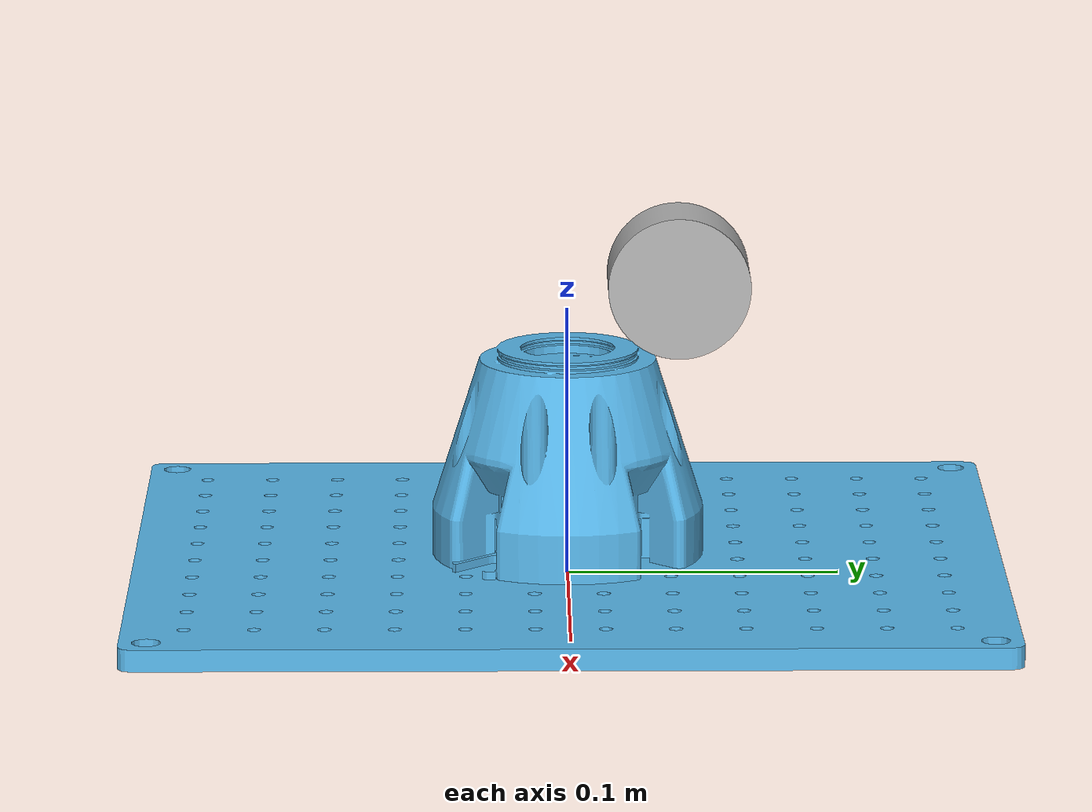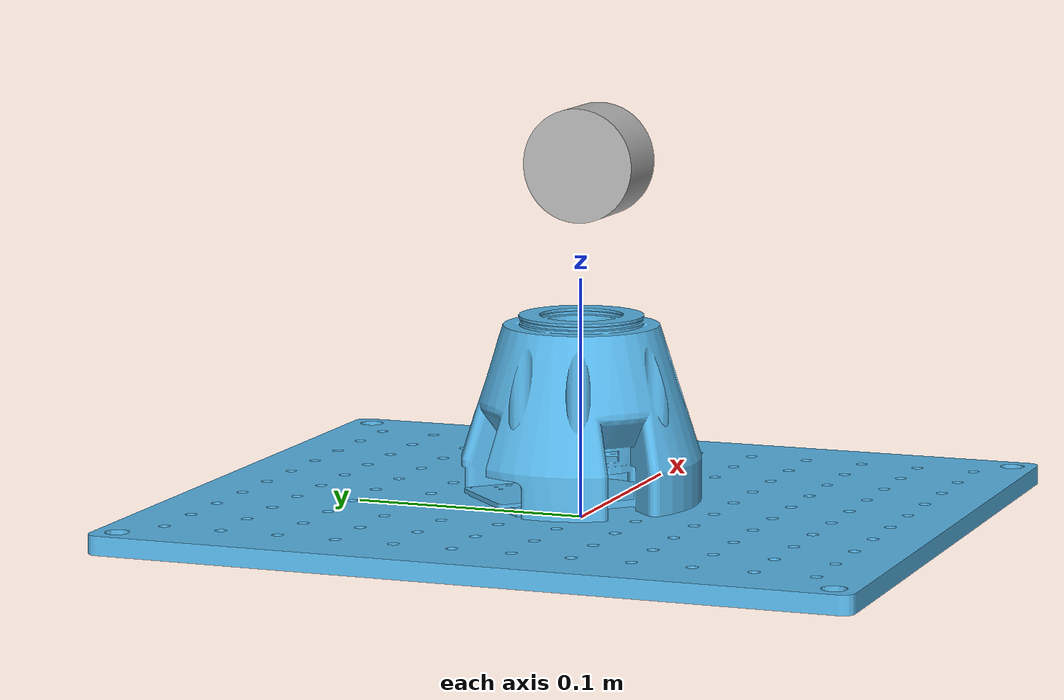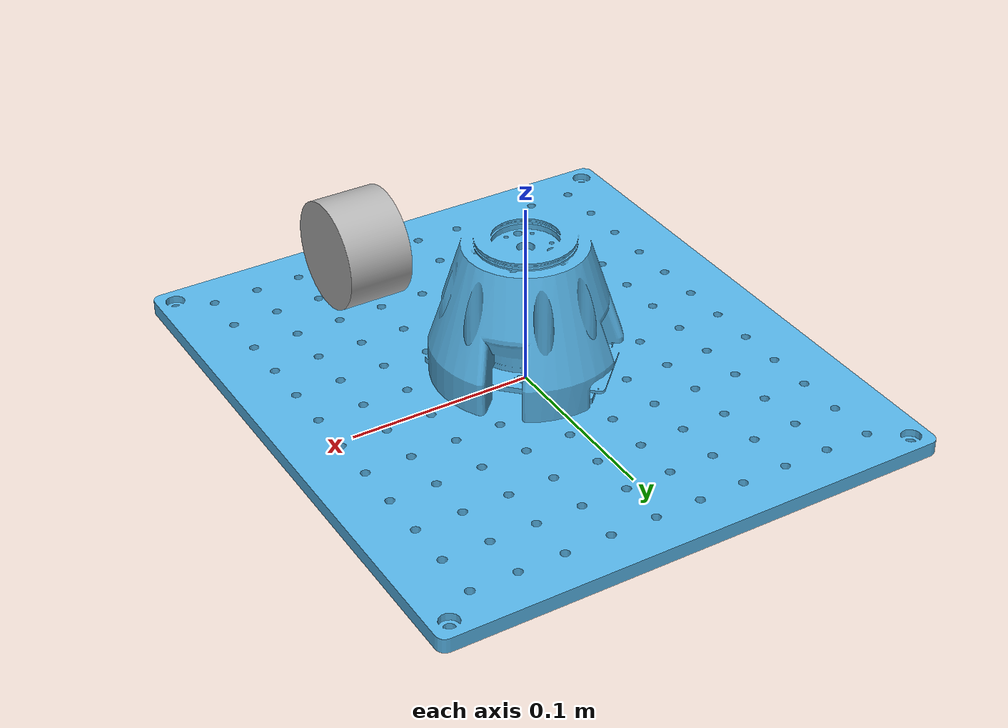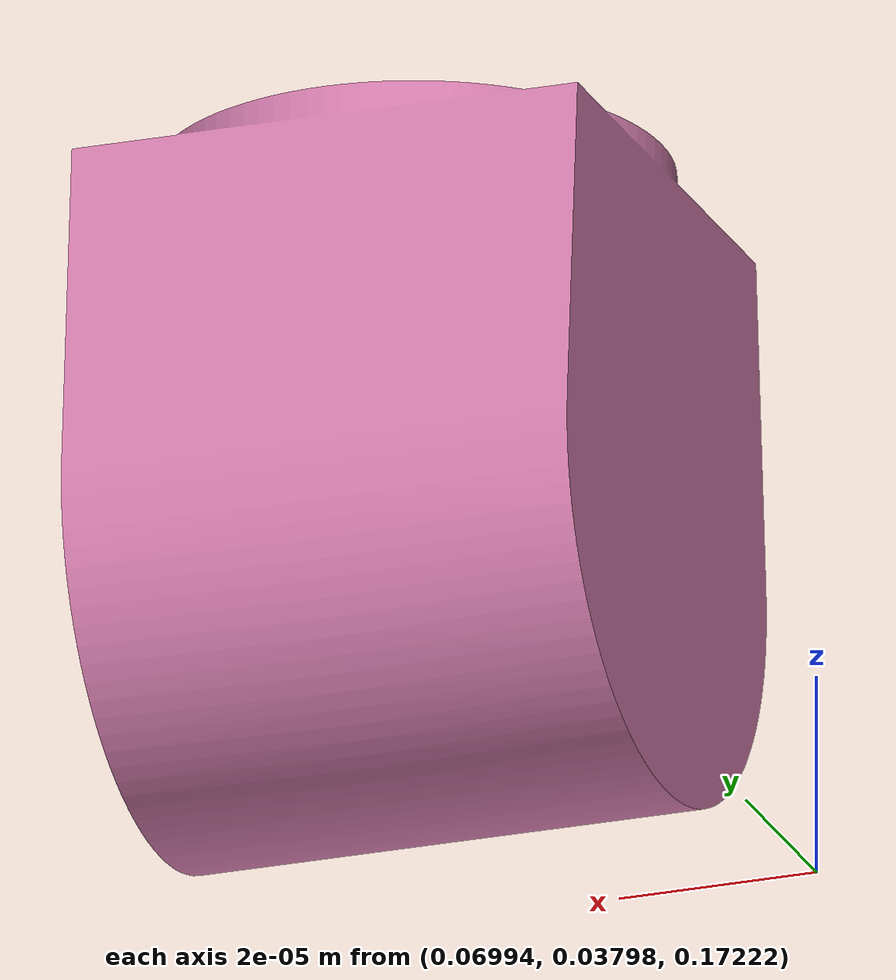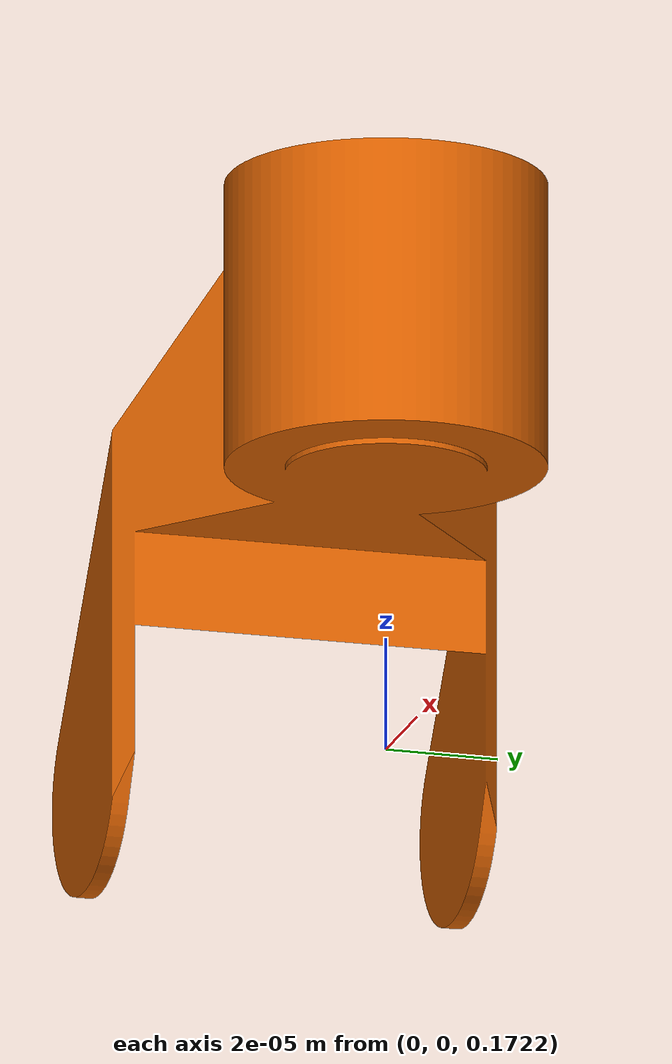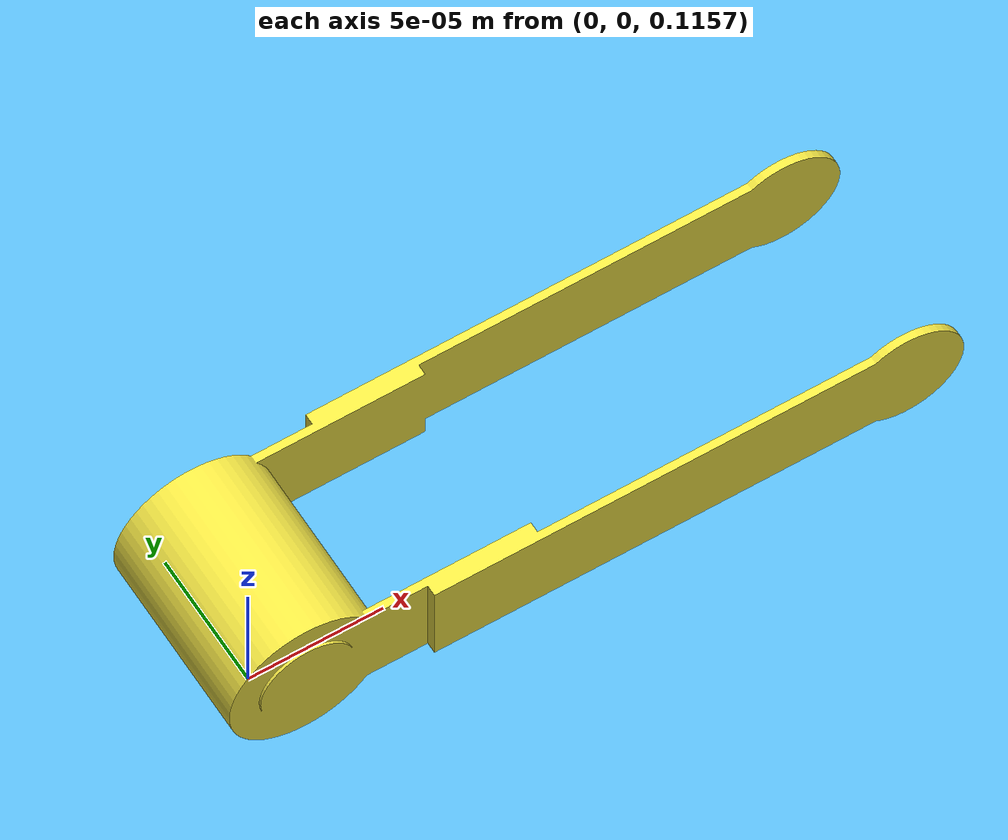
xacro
<?xml version="1.0"?>
<robot xmlns:xacro="http://www.ros.org/wiki/xacro" name="swing_boy_pro">
    <xacro:arg name="use_simulation" default="true"/>
    <xacro:if value="$(arg use_simulation)">
        <gazebo>
            <plugin name="arm_ros_control" filename="libarm_robot_hw_sim.so">
                <robotNamespace>/</robotNamespace>
                <robotSimType>arm_gazebo/ArmRobotHWSim</robotSimType>
            </plugin>
        </gazebo>
    </xacro:if>

    <xacro:include filename="$(find swing_boy_pro)/urdf/arm.urdf.xacro"/>
    <xacro:arm/>
    <xacro:include filename="$(find swing_boy_pro)/urdf/arm.transmission.xacro"/>
    <xacro:arm_transmission/>
</robot>

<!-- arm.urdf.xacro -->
<robot xmlns:xacro="http://www.ros.org/wiki/xacro" name="arm">
    <xacro:macro name="arm">
        <link name="world"></link>
        <xacro:property name="arm_name" value="swing_boy_pro"/>
        <xacro:property name="EE_connect_link" value="link6"/>

        <xacro:property name="base_link_ixx" value="0"/>
        <xacro:property name="base_link_ixy" value="0."/>
        <xacro:property name="base_link_ixz" value="0."/>
        <xacro:property name="base_link_iyy" value="0"/>
        <xacro:property name="base_link_iyz" value="0"/>
        <xacro:property name="base_link_izz" value="0"/>
        <xacro:property name="base_link_mass" value="0."/>
        <xacro:property name="base_link_x" value="0."/>
        <xacro:property name="base_link_y" value="0."/>
        <xacro:property name="base_link_z" value="0."/>

        <xacro:property name="link1_ixx" value="0"/>
        <xacro:property name="link1_ixy" value="0."/>
        <xacro:property name="link1_ixz" value="0."/>
        <xacro:property name="link1_iyy" value="0"/>
        <xacro:property name="link1_iyz" value="0"/>
        <xacro:property name="link1_izz" value="0"/>
        <xacro:property name="link1_mass" value="0."/>
        <xacro:property name="link1_x" value="0."/>
        <xacro:property name="link1_y" value="0."/>
        <xacro:property name="link1_z" value="0."/>

        <xacro:property name="link2_ixx" value="0."/>
        <xacro:property name="link2_ixy" value="0."/>
        <xacro:property name="link2_ixz" value="0."/>
        <xacro:property name="link2_iyy" value="0."/>
        <xacro:property name="link2_iyz" value="0."/>
        <xacro:property name="link2_izz" value="0."/>
        <xacro:property name="link2_mass" value="0."/>
        <xacro:property name="link2_x" value="0."/>
        <xacro:property name="link2_y" value="0."/>
        <xacro:property name="link2_z" value="0."/>

        <xacro:property name="link3_ixx" value="0."/>
        <xacro:property name="link3_ixy" value="0."/>
        <xacro:property name="link3_ixz" value="0."/>
        <xacro:property name="link3_iyy" value="0."/>
        <xacro:property name="link3_iyz" value="0."/>
        <xacro:property name="link3_izz" value="0."/>
        <xacro:property name="link3_mass" value="0."/>
        <xacro:property name="link3_x" value="0."/>
        <xacro:property name="link3_y" value="0."/>
        <xacro:property name="link3_z" value="0."/>

        <xacro:property name="link4_ixx" value="0."/>
        <xacro:property name="link4_ixy" value="0."/>
        <xacro:property name="link4_ixz" value="0."/>
        <xacro:property name="link4_iyy" value="0."/>
        <xacro:property name="link4_iyz" value="0."/>
        <xacro:property name="link4_izz" value="0."/>
        <xacro:property name="link4_mass" value="0."/>
        <xacro:property name="link4_x" value="0."/>
        <xacro:property name="link4_y" value="0."/>
        <xacro:property name="link4_z" value="0."/>

        <xacro:property name="link5_ixx" value="0."/>
        <xacro:property name="link5_ixy" value="0."/>
        <xacro:property name="link5_ixz" value="0."/>
        <xacro:property name="link5_iyy" value="0."/>
        <xacro:property name="link5_iyz" value="0."/>
        <xacro:property name="link5_izz" value="0."/>
        <xacro:property name="link5_mass" value="0."/>
        <xacro:property name="link5_x" value="0."/>
        <xacro:property name="link5_y" value="0."/>
        <xacro:property name="link5_z" value="0."/>

        <xacro:property name="link6_ixx" value="0."/>
        <xacro:property name="link6_ixy" value="0."/>
        <xacro:property name="link6_ixz" value="0."/>
        <xacro:property name="link6_iyy" value="0."/>
        <xacro:property name="link6_iyz" value="0."/>
        <xacro:property name="link6_izz" value="0."/>
        <xacro:property name="link6_mass" value="0."/>
        <xacro:property name="link6_x" value="0."/>
        <xacro:property name="link6_y" value="0."/>
        <xacro:property name="link6_z" value="0."/>

        <xacro:property name="dm4310_velocity" value="1"/>
        <xacro:property name="dm4310_effort" value="8"/>
        <xacro:property name="dm4340_velocity" value="1"/>
        <xacro:property name="dm4340_effort" value="8"/>

        <xacro:property name="joint1_offset_x" value="0."/>
        <xacro:property name="joint1_offset_y" value="0."/>
        <xacro:property name="joint1_offset_z" value="0.08125"/>
        <xacro:property name="joint1_lower" value="-3.14"/>
        <xacro:property name="joint1_upper" value="3.14"/>
        <xacro:property name="joint1_velocity" value="1"/>
        <xacro:property name="joint1_effort" value="8"/>

        <xacro:property name="joint2_offset_x" value="0."/>
        <xacro:property name="joint2_offset_y" value="0."/>
        <xacro:property name="joint2_offset_z" value="0.0345"/>
        <xacro:property name="joint2_lower" value="-3.14"/>
        <xacro:property name="joint2_upper" value="3.14"/>
        <xacro:property name="joint2_velocity" value="1"/>
        <xacro:property name="joint2_effort" value="8"/>

        <xacro:property name="joint3_offset_x" value="-0.220"/>
        <xacro:property name="joint3_offset_y" value="0."/>
        <xacro:property name="joint3_offset_z" value="0."/>
        <xacro:property name="joint3_lower" value="-3.14"/>
        <xacro:property name="joint3_upper" value="3.14"/>
        <xacro:property name="joint3_velocity" value="1"/>
        <xacro:property name="joint3_effort" value="8"/>

        <xacro:property name="joint4_offset_x" value="0.220"/>
        <xacro:property name="joint4_offset_y" value="0."/>
        <xacro:property name="joint4_offset_z" value="0.0565"/>
        <xacro:property name="joint4_lower" value="-3.14"/>
        <xacro:property name="joint4_upper" value="3.14"/>
        <xacro:property name="joint4_velocity" value="1"/>
        <xacro:property name="joint4_effort" value="8"/>

        <xacro:property name="joint5_offset_x" value="0.07"/>
        <xacro:property name="joint5_offset_y" value="0.038"/>
        <xacro:property name="joint5_offset_z" value="0."/>
        <xacro:property name="joint5_lower" value="-3.14"/>
        <xacro:property name="joint5_upper" value="3.14"/>
        <xacro:property name="joint5_velocity" value="1"/>
        <xacro:property name="joint5_effort" value="8"/>

        <xacro:property name="joint6_offset_x" value="0.0265"/>
        <xacro:property name="joint6_offset_y" value="0."/>
        <xacro:property name="joint6_offset_z" value="-0.038"/>
        <xacro:property name="joint6_lower" value="-3.14"/>
        <xacro:property name="joint6_upper" value="3.14"/>
        <xacro:property name="joint6_velocity" value="1"/>
        <xacro:property name="joint6_effort" value="8"/>
        <link name="base_link">
            <visual>
                <origin xyz="0 0 0" rpy="0 0 0"/>
                <geometry>
                    <mesh filename="package://swing_boy_pro/meshes/base_link.stl" scale="0.001 0.001 0.001"/>
                </geometry>
            </visual>
            <collision>
                <origin xyz="0. 0. 0." rpy="0 0 0"/>
                <geometry>
                    <mesh filename="package://swing_boy_pro/meshes/base_link.stl" scale="0.001 0.001 0.001"/>
                </geometry>
            </collision>
            <inertial>
                <mass value="${base_link_mass}"/>
                <origin xyz="${base_link_x} ${base_link_y} ${base_link_z}"/>
                <inertia ixx="${base_link_ixx}" ixy="${base_link_ixy}" ixz="${base_link_ixz}"
                         iyy="${base_link_iyy}" iyz="${base_link_iyz}"
                         izz="${base_link_izz}"/>
            </inertial>
        </link>
        <joint name="fixed_base" type="fixed">
            <parent link="world"/>
            <child link="base_link"/>
            <origin xyz="0 0 0" rpy="0 0 0"/>
        </joint>
        <link name="link1">
            <visual>
                <origin xyz="0 0 0" rpy="0 0 0"/>
                <geometry>
                    <mesh filename="package://swing_boy_pro/meshes/link1.stl" scale="0.001 0.001 0.001"/>
                </geometry>
            </visual>
            <collision>
                <origin xyz="0. 0. 0." rpy="0 0 0"/>
                <geometry>
                    <mesh filename="package://swing_boy_pro/meshes/link1.stl" scale="0.001 0.001 0.001"/>
                </geometry>
            </collision>
            <inertial>
                <mass value="${link1_mass}"/>
                <origin xyz="${link1_x} ${link1_y} ${link1_z}"/>
                <inertia ixx="${link1_ixx}" ixy="${link1_ixy}" ixz="${link1_ixz}"
                         iyy="${link1_iyy}" iyz="${link1_iyz}"
                         izz="${link1_izz}"/>
            </inertial>
        </link>
        <link name="link2">
            <visual>
                <origin xyz="0 0 0" rpy="0 0 0"/>
                <geometry>
                    <mesh filename="package://swing_boy_pro/meshes/link2.stl" scale="0.001 0.001 0.001"/>
                </geometry>
            </visual>
            <collision>
                <origin xyz="0 0. 0." rpy="0 0 0"/>
                <geometry>
                    <mesh filename="package://swing_boy_pro/meshes/link2.stl" scale="0.001 0.001 0.001"/>
                </geometry>
            </collision>
            <inertial>
                <mass value="${link2_mass}"/>
                <origin xyz="${link2_x} ${link2_y} ${link2_z}"/>
                <inertia ixx="${link2_ixx}" ixy="${link2_ixy}" ixz="${link2_ixz}"
                         iyy="${link2_iyy}" iyz="${link2_iyz}"
                         izz="${link2_izz}"/>
            </inertial>
        </link>
        <link name="link3">
            <visual>
                <origin xyz="0 0 0" rpy="0 0 0"/>
                <geometry>
                    <mesh filename="package://swing_boy_pro/meshes/link3.stl" scale="0.001 0.001 0.001"/>
                </geometry>
            </visual>
            <collision>
                <origin xyz="0. 0. 0." rpy="0 0 0"/>
                <geometry>
                    <mesh filename="package://swing_boy_pro/meshes/link3.stl" scale="0.001 0.001 0.001"/>
                </geometry>
            </collision>
            <inertial>
                <mass value="${link3_mass}"/>
                <origin xyz="${link3_x} ${link3_y} ${link3_z}"/>
                <inertia ixx="${link3_ixx}" ixy="${link3_ixy}" ixz="${link3_ixz}"
                         iyy="${link3_iyy}" iyz="${link3_iyz}"
                         izz="${link3_izz}"/>
            </inertial>
        </link>
        <link name="link4">
            <visual>
                <origin xyz="0 0 0" rpy="0 0 0"/>
                <geometry>
                    <mesh filename="package://swing_boy_pro/meshes/link4.stl" scale="0.001 0.001 0.001"/>
                </geometry>
            </visual>
            <collision>
                <origin xyz="0. 0. 0." rpy="0 0 0"/>
                <geometry>
                    <mesh filename="package://swing_boy_pro/meshes/link4.stl" scale="0.001 0.001 0.001"/>
                </geometry>
            </collision>
            <inertial>
                <mass value="${link4_mass}"/>
                <origin xyz="${link4_x} ${link4_y} ${link4_z}"/>
                <inertia ixx="${link4_ixx}" ixy="${link4_ixy}" ixz="${link4_ixz}"
                         iyy="${link4_iyy}" iyz="${link4_iyz}"
                         izz="${link4_izz}"/>
            </inertial>
        </link>
        <link name="link5">
            <visual>
                <origin xyz="0 0 0" rpy="0 0 0"/>
                <geometry>
                    <mesh filename="package://swing_boy_pro/meshes/link5.stl" scale="0.001 0.001 0.001"/>
                </geometry>
            </visual>
            <collision>
                <origin xyz="0 0. 0." rpy="0 0 0"/>
                <geometry>
                    <mesh filename="package://swing_boy_pro/meshes/link5.stl" scale="0.001 0.001 0.001"/>
                </geometry>
            </collision>
            <inertial>
                <mass value="${link5_mass}"/>
                <origin xyz="${link5_x} ${link5_y} ${link5_z}"/>
                <inertia ixx="${link5_ixx}" ixy="${link5_ixy}" ixz="${link5_ixz}"
                         iyy="${link5_iyy}" iyz="${link5_iyz}"
                         izz="${link5_izz}"/>
            </inertial>
        </link>
        <link name="link6">
            <visual>
                <origin xyz="0 0 0" rpy="0 0 0"/>
                <geometry>
                    <mesh filename="package://swing_boy_pro/meshes/link6.stl" scale="0.001 0.001 0.001"/>
                </geometry>
            </visual>
            <collision>
                <origin xyz="0. 0. 0." rpy="0 0 0"/>
                <geometry>
                    <mesh filename="package://swing_boy_pro/meshes/link6.stl" scale="0.001 0.001 0.001"/>
                </geometry>
            </collision>
            <inertial>
                <mass value="${link6_mass}"/>
                <origin xyz="${link6_x} ${link6_y} ${link6_z}"/>
                <inertia ixx="${link6_ixx}" ixy="${link6_ixy}" ixz="${link6_ixz}"
                         iyy="${link6_iyy}" iyz="${link6_iyz}"
                         izz="${link6_izz}"/>
            </inertial>
        </link>

        <joint name="joint1" type="revolute">
            <parent link="base_link"/>
            <child link="link1"/>
            <origin xyz="${joint1_offset_x} ${joint1_offset_y} ${joint1_offset_z}" rpy="0 0 0"/>
            <axis xyz="0 0 1"/>
            <limit lower="${joint1_lower}" upper="${joint1_upper}" velocity="${joint1_velocity}" effort="${joint1_effort}"/>
        </joint>

        <joint name="joint2" type="revolute">
            <parent link="link1"/>
            <child link="link2"/>
            <origin xyz="${joint2_offset_x} ${joint2_offset_y} ${joint2_offset_z}" rpy="0 0 0"/>
            <axis xyz="0 1 0"/>
            <limit lower="${joint2_lower}" upper="${joint2_upper}" velocity="${joint2_velocity}" effort="${joint2_effort}"/>
        </joint>

        <joint name="joint3" type="revolute">
            <parent link="link2"/>
            <child link="link3"/>
            <origin xyz="${joint3_offset_x} ${joint3_offset_y} ${joint3_offset_z}" rpy="0 0 0"/>
            <axis xyz="0 1 0"/>
            <limit lower="${joint3_lower}" upper="${joint3_upper}" velocity="${joint3_velocity}" effort="${joint3_effort}"/>
        </joint>

        <joint name="joint4" type="revolute">
            <parent link="link3"/>
            <child link="link4"/>
            <origin xyz="${joint4_offset_x} ${joint4_offset_y} ${joint4_offset_z}" rpy="0 0 0"/>
            <axis xyz="0 1 0"/>
            <limit lower="${joint4_lower}" upper="${joint4_upper}" velocity="${joint4_velocity}" effort="${joint4_effort}"/>
        </joint>

        <joint name="joint5" type="revolute">
            <parent link="link4"/>
            <child link="link5"/>
            <origin xyz="${joint5_offset_x} ${joint5_offset_y} ${joint5_offset_z}" rpy="0 0 0"/>
            <axis xyz="0 0 1"/>
            <limit lower="${joint5_lower}" upper="${joint5_upper}" velocity="${joint5_velocity}" effort="${joint5_effort}"/>
        </joint>

        <joint name="joint6" type="revolute">
            <parent link="link5"/>
            <child link="link6"/>
            <origin xyz="${joint6_offset_x} ${joint6_offset_y} ${joint6_offset_z}" rpy="0 0 0"/>
            <axis xyz="1 0 0"/>
            <limit lower="${joint6_lower}" upper="${joint6_upper}" velocity="${joint6_velocity}" effort="${joint6_effort}"/>
        </joint>

        <link name="EE"/>
        <joint name="EE_fixed" type="fixed">
            <parent link="link6"/>
            <child link="EE"/>
            <origin xyz="0.2 0 0.035" rpy="0 0 0"/>
        </joint>
    </xacro:macro>
</robot>
